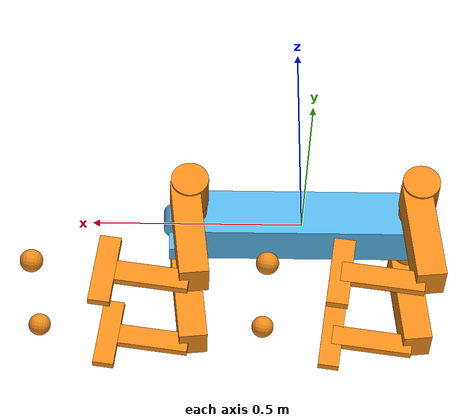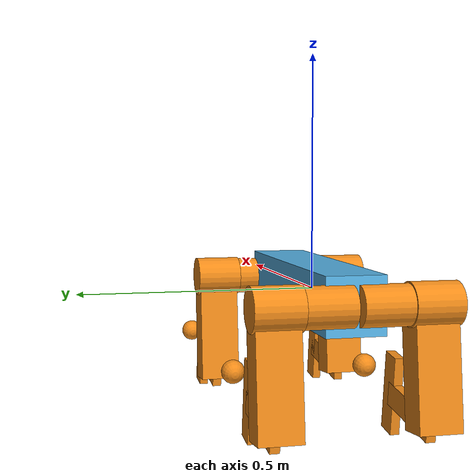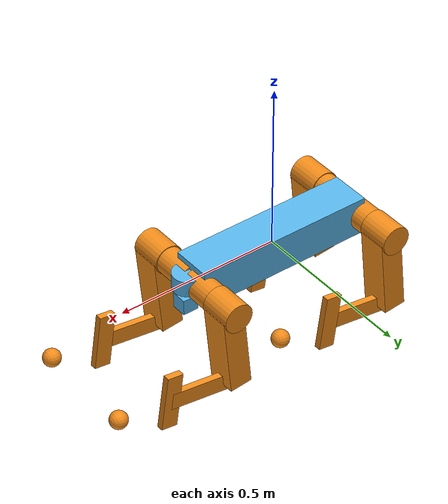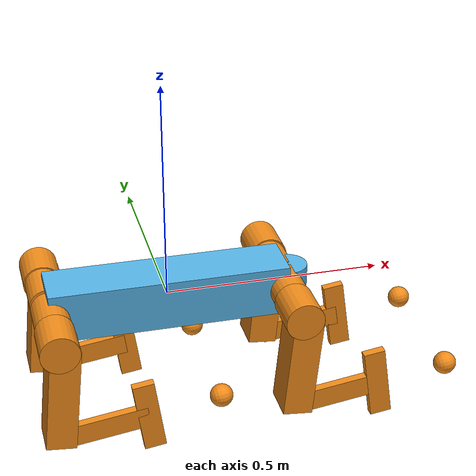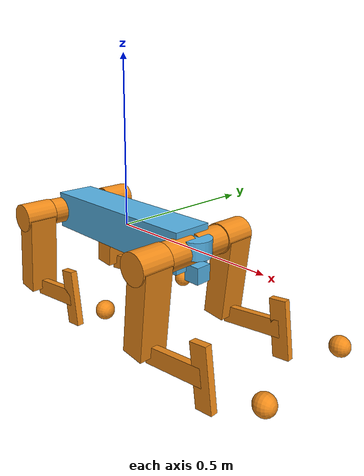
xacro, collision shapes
<?xml version="1.0"?>

<robot name="arcdog_adjustable_leg" xmlns:xacro="http://www.ros.org/wiki/xacro">

	<xacro:arg name="DEBUG" default="false"/>
	<xacro:arg name="GAZEBO" default="false"/>
	<xacro:arg name="CLASSIC" default="false"/>
    <xacro:arg name="robot_type" default="arcdog_adjustable_leg"/>
    <xacro:property name="robot_type" value="$(arg robot_type)"/>
	<xacro:arg name="simulator" default="test"/>
    <xacro:property name="simulator" value="$(arg simulator)"/>

	<xacro:include filename="$(find arcdog_adjustable_leg_description)/xacro/const.xacro"/>
	<xacro:include filename="$(find arcdog_adjustable_leg_description)/xacro/materials.xacro"/>
	<xacro:include filename="$(find arcdog_adjustable_leg_description)/xacro/leg.xacro"/>

	<xacro:if value="$(arg GAZEBO)">
		<xacro:if value="$(arg CLASSIC)">
			<xacro:include filename="$(find arcdog_adjustable_leg_description)/xacro/gazebo_classic.xacro"/>
		</xacro:if>
		<xacro:unless value="$(arg CLASSIC)">
			<xacro:include filename="$(find arcdog_adjustable_leg_description)/xacro/gazebo.xacro"/>
		</xacro:unless>
	</xacro:if>
	<xacro:unless value="$(arg GAZEBO)">
		<xacro:include filename="$(find arcdog_adjustable_leg_description)/xacro/ros2_control.xacro"/>
	</xacro:unless>

	<!-- Rotor related joint and link is only for demonstrate location. -->
	<!-- Actually, the rotor will rotate and the joint is not fixed. Reduction ratio should be considered. -->

	<!-- Debug mode will hung up the robot, use "true" or "false" to switch it. -->
	<xacro:if value="$(arg DEBUG)">
		<link name="world"/>
		<joint name="base_static_joint" type="fixed">
			<origin rpy="0 0 0" xyz="0 0 0"/>
			<parent link="world"/>
			<child link="base"/>
		</joint>
	</xacro:if>

	<link name="base">
		<visual>
			<origin rpy="0 0 0" xyz="0 0 0"/>
			<geometry>
				<box size="0.001 0.001 0.001"/>
			</geometry>
		</visual>
	</link>

	<joint name="floating_base" type="fixed">
		<origin rpy="0 0 0" xyz="0 0 0"/>
		<parent link="base"/>
		<child link="trunk"/>
	</joint>

	<link name="trunk">
		<visual>
			<origin rpy="0 0 0" xyz="0 0 0"/>
			<geometry>
				<mesh filename="file://$(find arcdog_adjustable_leg_description)/assets/trunk.stl" scale="1 1 1"/>
			</geometry>
		</visual>
		<collision>
			<origin rpy="0 0 0" xyz="0 0 0"/>
			<geometry>
				<box size="${trunk_length} ${trunk_width} ${trunk_height}"/>
			</geometry>
		</collision>
		<collision>
			<origin rpy="0 0 0" xyz="0 0 0"/>
			<geometry>
				<box size="0.1881 0.04675 0.057"/>
			</geometry>
		</collision>
		<collision>
			<origin rpy="0 0 0" xyz="0.285 0 0.01"/>
			<geometry>
				<cylinder length="0.05" radius="0.045"/>
			</geometry>
		</collision>
		<collision>
			<origin rpy="0 0 0" xyz="0.293 0 -0.06"/>
			<geometry>
				<box size="0.047 0.047 0.047"/>
			</geometry>
		</collision>
		<inertial>
			<origin rpy="0 0 0" xyz="${trunk_com_x} ${trunk_com_y} ${trunk_com_z}"/>
			<mass value="${trunk_mass}"/>
			<inertia
							ixx="${trunk_ixx}" ixy="${trunk_ixy}" ixz="${trunk_ixz}"
							iyy="${trunk_iyy}" iyz="${trunk_iyz}"
							izz="${trunk_izz}"/>
		</inertial>
	</link>

	<joint name="imu_joint" type="fixed">
		<parent link="trunk"/>
		<child link="imu_link"/>
		<origin rpy="0 0 0" xyz="0 0 0"/>
	</joint>

	<link name="imu_link">
		<inertial>
			<mass value="0.001"/>
			<origin rpy="0 0 0" xyz="0 0 0"/>
			<inertia ixx="0.0001" ixy="0" ixz="0" iyy="0.0001" iyz="0" izz="0.0001"/>
		</inertial>
		<visual>
			<origin rpy="0 0 0" xyz="0 0 0"/>
			<geometry>
				<box size="0.001 0.001 0.001"/>
			</geometry>
		</visual>
		<collision>
			<origin rpy="0 0 0" xyz="0 0 0"/>
			<geometry>
				<box size=".001 .001 .001"/>
			</geometry>
		</collision>
	</link>
    <xacro:leg prefix="FR" mirror="-1" mirror_dae="False" front_hind="1" front_hind_dae="True" simulator="${simulator}" robot_type="${robot_type}">
        <origin rpy="0 0 0" xyz="${leg_offset_x} ${-leg_offset_y} 0"/>
    </xacro:leg>

    <xacro:leg prefix="FL" mirror="1" mirror_dae="True" front_hind="1" front_hind_dae="True" simulator="${simulator}" robot_type="${robot_type}">
        <origin rpy="0 0 0" xyz="${leg_offset_x} ${leg_offset_y} 0"/>
    </xacro:leg>

    <xacro:leg prefix="RR" mirror="-1" mirror_dae="False" front_hind="-1" front_hind_dae="False" simulator="${simulator}" robot_type="${robot_type}">
        <origin rpy="0 0 0" xyz="${-leg_offset_x} ${-leg_offset_y} 0"/>
    </xacro:leg>

    <xacro:leg prefix="RL" mirror="1" mirror_dae="True" front_hind="-1" front_hind_dae="False" simulator="${simulator}" robot_type="${robot_type}">
        <origin rpy="0 0 0" xyz="${-leg_offset_x} ${leg_offset_y} 0"/>
    </xacro:leg>
</robot>

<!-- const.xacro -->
<robot xmlns:xacro="http://www.ros.org/wiki/xacro">

	<!-- Constants for robot dimensions -->
	<xacro:property name="PI" value="3.1415926535897931"/>
	<xacro:property name="stick_mass" value="0.00001"/>

	<!-- simplified collision value -->
    <xacro:property name="trunk_width" value="0.121"/>
    <xacro:property name="trunk_length" value="0.548"/>
    <xacro:property name="trunk_height" value="0.116"/>
    <xacro:property name="hip_radius" value="0.041"/>
    <xacro:property name="hip_length" value=" 0.1095"/>
    <xacro:property name="thigh_shoulder_radius" value="0.044"/>
    <xacro:property name="thigh_shoulder_length" value="0.0985"/>
    <xacro:property name="thigh_shoulder_y_offset" value="0.0"/> //TODO

    <xacro:property name="thigh_width" value="0.088"/>
    <xacro:property name="thigh_height" value="0.06797"/>
    <xacro:property name="thigh_x_offset" value="0.000"/> //TODO
    <xacro:property name="calf_width" value="0.02"/>
    <xacro:property name="calf_height" value="0.05"/>
    <xacro:property name="calf_x_offset" value="0.000"/> //TODO
	<xacro:property name="foot_radius" value="0.0265"/>
	<xacro:property name="stick_radius" value="0.01"/>
	<xacro:property name="stick_length" value="0.2"/>

    <!-- kinematic value -->
    <xacro:property name="thigh_offset" value="0.09426"/>
    <xacro:property name="thigh_length" value="0.2445"/>
    <xacro:property name="calf_length" value="0.1930"/>

    <!-- leg offset from trunk center value -->
    <xacro:property name="leg_offset_x" value="0.269"/>
    <xacro:property name="leg_offset_y" value="0.0605"/>
    <xacro:property name="trunk_offset_z" value="0.01675"/> //TODO
    <xacro:property name="hip_offset" value="0.0001"/> //TODO

	<!-- offset of link locations (left front) -->
	<xacro:property name="hip_offset_x" value="0.1934"/>
	<xacro:property name="hip_offset_y" value="0.0465"/>
	<xacro:property name="hip_offset_z" value="0.0"/>

    <!-- kinematic value -->

	<xacro:property name="calf_offset_x" value="0.0"/>
	<xacro:property name="calf_offset_y" value="0.0"/>
	<xacro:property name="calf_offset_z" value="-0.213"/>

    <!-- joint limits -->
    <xacro:property name="damping" value="0.05"/>
    <xacro:property name="friction" value="0.01"/>
    <xacro:property name="hip_max" value="${70*pi/180.0}"/>
    <xacro:property name="hip_min" value="${-70*pi/180.0}"/>
    <xacro:property name="hip_velocity_max" value="20"/>
    <xacro:property name="hip_torque_max" value="35.278"/>
    <xacro:property name="thigh_max" value="3.4907"/>
    <xacro:property name="thigh_min" value="-1.5708"/>
    <xacro:property name="thigh_velocity_max" value="20"/>
    <xacro:property name="thigh_torque_max" value="35.278"/>
    <xacro:property name="calf_max" value="${-37*pi/180.0}"/>
    <xacro:property name="calf_min" value="${-159*pi/180.0}"/>
    <xacro:property name="calf_velocity_max" value="15.89"/>
    <xacro:property name="calf_torque_max" value="44.4"/>

    <!-- dynamics inertial value    total 22.0kg-->
    <!-- trunk -->
    <xacro:property name="trunk_mass" value="7.021"/>
    <xacro:property name="trunk_com_x" value="0.00575"/>
    <xacro:property name="trunk_com_y" value="0.00126"/>
    <xacro:property name="trunk_com_z" value="-0.00469"/>
    <xacro:property name="trunk_ixx" value="0.03769023916"/>
    <xacro:property name="trunk_ixy" value="0.00001433761"/>
    <xacro:property name="trunk_ixz" value="0.00051349975"/>
    <xacro:property name="trunk_iyy" value="0.05008788073"/>
    <xacro:property name="trunk_iyz" value="0.00015851764"/>
    <xacro:property name="trunk_izz" value="0.07146322696"/>

    <!-- hip (left front) -->
    <xacro:property name="hip_mass" value="1.162"/>
    <xacro:property name="hip_com_x" value="-0.00758"/>
    <xacro:property name="hip_com_y" value="-0.00359"/>
    <xacro:property name="hip_com_z" value="-0.00029"/>
    <xacro:property name="hip_ixx" value="0.00095157705"/>
    <xacro:property name="hip_ixy" value="0.00001109670"/>
    <xacro:property name="hip_ixz" value="-0.00000266665"/>
    <xacro:property name="hip_iyy" value="0.00159323348"/>
    <xacro:property name="hip_iyz" value="-0.00001267180"/>
    <xacro:property name="hip_izz" value="0.00125451931"/>

    <!-- thigh -->
    <xacro:property name="thigh_mass" value="1.528"/>
    <xacro:property name="thigh_com_x" value="0.00033"/>
    <xacro:property name="thigh_com_y" value="0.03334"/>
    <xacro:property name="thigh_com_z" value="-0.02983"/>
    <xacro:property name="thigh_ixx" value="0.00884041519"/>
    <xacro:property name="thigh_ixy" value="-0.00003381758"/>
    <xacro:property name="thigh_ixz" value="-0.00005336860"/>
    <xacro:property name="thigh_iyy" value="0.00784145389"/>
    <xacro:property name="thigh_iyz" value="0.00128350622"/>
    <xacro:property name="thigh_izz" value="0.00260045020"/>

    <!-- calf -->
    <xacro:property name="calf_mass" value="0.132"/>
    <xacro:property name="calf_com_x" value="0.0016"/>
    <xacro:property name="calf_com_y" value="0.00438"/>
    <xacro:property name="calf_com_z" value="-0.12232"/>
    <xacro:property name="calf_ixx" value="0.00228050753"/>
    <xacro:property name="calf_ixy" value="-0.00000033551"/>
    <xacro:property name="calf_ixz" value="0.00000826635"/>
    <xacro:property name="calf_iyy" value="0.00225891907"/>
    <xacro:property name="calf_iyz" value="0.00010727008"/>
    <xacro:property name="calf_izz" value="0.00005160443"/>

	<!-- foot -->
	<xacro:property name="foot_mass" value="0.06"/>

    <!-- pricmatic joint -->
    <xacro:property name="box_effort_max" value="50"/>
    <xacro:property name="box_velocity_max" value="50"/>

    <!-- adjustable leg -->
    <xacro:property name="box_length" value="0.1691"/>
    <xacro:property name="box_width" value="0.02"/>
    <xacro:property name="box_height" value="0.05"/>
    <xacro:property name="box_mass" value="0.132"/>
    <xacro:property name="box_ixx" value="0.00228050753"/>
    <xacro:property name="box_iyy" value="0.00225891907"/>
    <xacro:property name="box_izz" value="0.00005160443"/>

</robot>

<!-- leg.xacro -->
<robot xmlns:xacro="http://www.ros.org/wiki/xacro">

    <xacro:include filename="$(find arcdog_adjustable_leg_description)/xacro/transmission.xacro"/>

    <xacro:macro name="leg" params="prefix mirror mirror_dae front_hind front_hind_dae simulator robot_type *origin">

        <xacro:if value="${simulator == 'ocs2'}">
            <joint name="${prefix}_HAA" type="revolute">
                <xacro:insert_block name="origin"/>
                <parent link="trunk"/>
                <child link="${prefix}_hip"/>
                <axis xyz="1 0 0"/>
                <dynamics damping="${damping}" friction="${friction}"/>
                <xacro:if value="${(mirror_dae == True)}">
                    <limit effort="${hip_torque_max}" velocity="${hip_velocity_max}" lower="${hip_min}"
                        upper="${hip_max}"/>
                </xacro:if>
                <xacro:if value="${(mirror_dae == False)}">
                    <limit effort="${hip_torque_max}" velocity="${hip_velocity_max}" lower="${-hip_max}"
                        upper="${-hip_min}"/>
                </xacro:if>
            </joint>
        </xacro:if>

        <xacro:if value="${simulator == 'test'}">
            <joint name="${prefix}_hip_joint" type="revolute">
                <xacro:insert_block name="origin"/>
                <parent link="trunk"/>
                <child link="${prefix}_hip"/>
                <axis xyz="1 0 0"/>
                <dynamics damping="${damping}" friction="${friction}"/>
                <xacro:if value="${(mirror_dae == True)}">
                    <limit effort="${hip_torque_max}" velocity="${hip_velocity_max}" lower="${hip_min}"
                        upper="${hip_max}"/>
                </xacro:if>
                <xacro:if value="${(mirror_dae == False)}">
                    <limit effort="${hip_torque_max}" velocity="${hip_velocity_max}" lower="${-hip_max}"
                        upper="${-hip_min}"/>
                </xacro:if>
            </joint>
        </xacro:if>

        <xacro:if value="${simulator == 'mujoco'}">
            <joint name="${prefix}_hip_joint" type="revolute">
                <xacro:insert_block name="origin"/>
                <parent link="trunk"/>
                <child link="${prefix}_hip"/>
                <axis xyz="1 0 0"/>
                <dynamics damping="${damping}" friction="${friction}"/>
                <xacro:if value="${(mirror_dae == True)}">
                    <limit effort="${hip_torque_max}" velocity="${hip_velocity_max}" lower="${hip_min}"
                        upper="${hip_max}"/>
                </xacro:if>
                <xacro:if value="${(mirror_dae == False)}">
                    <limit effort="${hip_torque_max}" velocity="${hip_velocity_max}" lower="${-hip_max}"
                        upper="${-hip_min}"/>
                </xacro:if>
            </joint>
        </xacro:if>

        <link name="${prefix}_hip">
            <visual>
                <xacro:if value="${(mirror_dae == True) and (front_hind_dae == True)}">
                    <origin rpy="0 0 0" xyz="0 0 0"/>
                </xacro:if>
                <xacro:if value="${(mirror_dae == False) and (front_hind_dae == True)}">
                    <origin rpy="${pi} 0 0" xyz="0 0 0"/>
                </xacro:if>
                <xacro:if value="${(mirror_dae == True) and (front_hind_dae == False)}">
                    <origin rpy="0 ${pi} 0" xyz="0 0 0"/>
                </xacro:if>
                <xacro:if value="${(mirror_dae == False) and (front_hind_dae == False)}">
                    <origin rpy="${pi} ${pi} 0" xyz="0 0 0"/>
                </xacro:if>
                <geometry>
                    <mesh filename="package://arcdog_adjustable_leg_description/assets/hip.stl"
                          scale="1 1 1"/>
                </geometry>
                <material name="orange"/>
            </visual>
            <collision>
                <origin rpy="${pi/2.0} 0 0" xyz="0 0 0"/>
                <geometry>
                    <cylinder length="${hip_length}" radius="${hip_radius}"/>
                </geometry>
            </collision>
            <inertial>
                <origin rpy="0 0 0" xyz="${hip_com_x*front_hind} ${hip_com_y*mirror} ${hip_com_z}"/>
                <mass value="${hip_mass}"/>
                <inertia
                        ixx="${hip_ixx}" ixy="${hip_ixy*mirror*front_hind}" ixz="${hip_ixz*front_hind}"
                        iyy="${hip_iyy}" iyz="${hip_iyz*mirror}"
                        izz="${hip_izz}"/>
            </inertial>
        </link>

        <xacro:if value="${simulator == 'ocs2'}">
            <joint name="${prefix}_HFE" type="revolute">
                <origin rpy="0 0 0" xyz="0 ${thigh_offset*mirror} 0"/>
                <parent link="${prefix}_hip"/>
                <child link="${prefix}_thigh"/>
                <axis xyz="0 1 0"/>
                <dynamics damping="${damping}" friction="${friction}"/>
                <limit effort="${thigh_torque_max}" velocity="${thigh_velocity_max}" lower="${thigh_min}"
                    upper="${thigh_max}"/>
            </joint>
        </xacro:if>

        <xacro:if value="${simulator == 'test'}">
            <joint name="${prefix}_thigh_joint" type="revolute">
                <origin rpy="0 0 0" xyz="0 ${thigh_offset*mirror} 0"/>
                <parent link="${prefix}_hip"/>
                <child link="${prefix}_thigh"/>
                <axis xyz="0 1 0"/>
                <dynamics damping="${damping}" friction="${friction}"/>
                <limit effort="${thigh_torque_max}" velocity="${thigh_velocity_max}" lower="${thigh_min}"
                    upper="${thigh_max}"/>
            </joint>
        </xacro:if>

        <xacro:if value="${simulator == 'mujoco'}">
            <joint name="${prefix}_thigh_joint" type="revolute">
                <origin rpy="0 0 0" xyz="0 ${thigh_offset*mirror} 0"/>
                <parent link="${prefix}_hip"/>
                <child link="${prefix}_thigh"/>
                <axis xyz="0 1 0"/>
                <dynamics damping="${damping}" friction="${friction}"/>
                <limit effort="${thigh_torque_max}" velocity="${thigh_velocity_max}" lower="${thigh_min}"
                    upper="${thigh_max}"/>
            </joint>
        </xacro:if>

        <link name="${prefix}_thigh">
            <visual>
                <origin rpy="0 0 0" xyz="0 0 0"/>
                <geometry>
                    <xacro:if value="${mirror_dae == True}">
                        <mesh filename="package://arcdog_adjustable_leg_description/assets/thigh.stl"
                              scale="1 1 1"/>
                    </xacro:if>
                    <xacro:if value="${mirror_dae == False}">
                        <mesh filename="package://arcdog_adjustable_leg_description/assets/thigh_mirror.stl"
                              scale="1 1 1"/>
                    </xacro:if>
                </geometry>
                <material name="orange"/>
            </visual>
            <collision>
                <origin rpy="0 ${pi/2.0+0.1} 0" xyz="${thigh_x_offset} 0 ${-thigh_length/2.0}"/>
                <geometry>
                    <box size="${thigh_length} ${thigh_width} ${thigh_height}"/>
                </geometry>
            </collision>
            <collision>
                <origin rpy="${pi/2.0} 0 0" xyz="0 ${mirror*thigh_shoulder_y_offset} 0"/>
                <geometry>
                    <cylinder length="${thigh_shoulder_length}" radius="${thigh_shoulder_radius}"/>
                </geometry>
            </collision>
            <inertial>
                <origin rpy="0 0 0" xyz="${thigh_com_x} ${thigh_com_y*mirror} ${thigh_com_z}"/>
                <mass value="${thigh_mass}"/>
                <inertia
                        ixx="${thigh_ixx}" ixy="${thigh_ixy*mirror}" ixz="${thigh_ixz}"
                        iyy="${thigh_iyy}" iyz="${thigh_iyz*mirror}"
                        izz="${thigh_izz}"/>
            </inertial>
        </link>

        <xacro:if value="${simulator == 'ocs2'}">
            <joint name="${prefix}_KFE" type="revolute">
                <origin rpy="0 0 0" xyz="0 0 ${-thigh_length}"/>
                <parent link="${prefix}_thigh"/>
                <child link="${prefix}_calf"/>
                <axis xyz="0 1 0"/>
                <dynamics damping="${damping}" friction="${friction}"/>
                <limit effort="${calf_torque_max}" velocity="${calf_velocity_max}" lower="${calf_min}" upper="${calf_max}"/>
            </joint>
        </xacro:if>

        <xacro:if value="${simulator == 'test'}">
            <joint name="${prefix}_calf_joint" type="revolute">
                <origin rpy="0 0 0" xyz="0 0 ${-thigh_length}"/>
                <parent link="${prefix}_thigh"/>
                <child link="${prefix}_calf"/>
                <axis xyz="0 1 0"/>
                <dynamics damping="${damping}" friction="${friction}"/>
                <limit effort="${calf_torque_max}" velocity="${calf_velocity_max}" lower="${calf_min}" upper="${calf_max}"/>
            </joint>
        </xacro:if>

        <xacro:if value="${simulator == 'mujoco'}">
            <joint name="${prefix}_calf_joint" type="revolute">
                <origin rpy="0 0 0" xyz="0 0 ${-thigh_length}"/>
                <parent link="${prefix}_thigh"/>
                <child link="${prefix}_calf"/>
                <axis xyz="0 1 0"/>
                <dynamics damping="${damping}" friction="${friction}"/>
                <limit effort="${calf_torque_max}" velocity="${calf_velocity_max}" lower="${calf_min}" upper="${calf_max}"/>
            </joint>
        </xacro:if>

        <link name="${prefix}_calf">
            <visual>
                <origin rpy="0 0 0" xyz="0 0 0"/>
                <geometry>
                    <mesh filename="package://arcdog_adjustable_leg_description/assets/calf.stl"
                          scale="1 1 1"/>
                </geometry>
                <material name="orange"/>
            </visual>
            <collision>
                <origin rpy="0 ${pi/2.0} 0" xyz="${calf_x_offset} 0 ${-calf_length/2.0}"/>
                <geometry>
                    <box size="${calf_length} ${calf_width} ${calf_height}"/>
                </geometry>
            </collision>
            <inertial>
                <origin rpy="0 0 0" xyz="${calf_com_x} ${calf_com_y} ${calf_com_z}"/>
                <mass value="${calf_mass}"/>
                <inertia
                        ixx="${calf_ixx}" ixy="${calf_ixy}" ixz="${calf_ixz}"
                        iyy="${calf_iyy}" iyz="${calf_iyz}"
                        izz="${calf_izz}"/>
            </inertial>
        </link>

        <!-- 在 calf 和 foot 之间添加 box link -->
        <link name="${prefix}_box">
            <visual>
                <origin rpy="0 0 0" xyz="0 0 0"/>
                <geometry>
                    <mesh filename="package://arcdog_adjustable_leg_description/assets/adjustable_leg.stl"
                          scale="1 1 1"/>
                </geometry>
                <material name="orange"/>
            </visual>
            <collision>
                <origin rpy="0 0 0" xyz="0 0 0"/>
                <geometry>
                    <box size="${box_length} ${box_width} ${box_height}"/>
                </geometry>
            </collision>
            <inertial>
                <origin rpy="0 0 0" xyz="0 0 0"/>
                <mass value="${box_mass}"/> <!-- 定义 box 的质量 -->
                <inertia
                    ixx="${box_ixx}" ixy="0" ixz="0"
                    iyy="${box_iyy}" iyz="0"
                    izz="${box_izz}"/>
            </inertial>
        </link>

        <!-- 添加 prismatic joint -->
        <joint name="${prefix}_box_joint" type="prismatic">
            <origin rpy="0 0 0" xyz="0 0 ${-calf_length}"/> <!-- 根据 calf 的长度调整位置 -->
            <parent link="${prefix}_calf"/>
            <child link="${prefix}_box"/>
            <axis xyz="0 0 1"/> <!-- 定义滑动轴 -->
            <dynamics damping="${damping}" friction="${friction}"/>
            <limit effort="${box_effort_max}" velocity="${box_velocity_max}" lower="0" upper="${-calf_length}"/> <!-- 定义限制条件 -->
        </joint>

        <joint name="${prefix}_foot_fixed" type="fixed" dont_collapse="true">
            <origin rpy="0 0 0" xyz="0 0 ${-box_length}"/> <!-- 连接到 box 的底部 -->
            <parent link="${prefix}_box"/>
            <child link="${prefix}_foot"/>
        </joint>

        <link name="${prefix}_foot">
            <visual>
                <origin rpy="0 0 0" xyz="0 0 0"/>
                <geometry>
                    <sphere radius="${foot_radius-0.01}"/>
                </geometry>
                <material name="orange"/>
            </visual>
            <collision>
                <origin rpy="0 0 0" xyz="0 0 0"/>
                <geometry>
                    <sphere radius="${foot_radius}"/>
                </geometry>
            </collision>
            <inertial>
                <mass value="${foot_mass}"/>
                <inertia
                        ixx="${(2*foot_mass)/5.0*(foot_radius*foot_radius)}" ixy="0.0" ixz="0.0"
                        iyy="${(2*foot_mass)/5.0*(foot_radius*foot_radius)}" iyz="0.0"
                        izz="${(2*foot_mass)/5.0*(foot_radius*foot_radius)}"/>
            </inertial>
        </link>

        <gazebo reference="${prefix}_foot_fixed">
            <disableFixedJointLumping>true</disableFixedJointLumping>
        </gazebo>

        <gazebo reference="${prefix}_hip">
            <mu1>0.2</mu1>
            <mu2>0.2</mu2>
            <material>Gazebo/DarkGrey</material>
        </gazebo>
        <gazebo reference="${prefix}_thigh">
            <mu1>0.2</mu1>
            <mu2>0.2</mu2>
            <self_collide>0</self_collide>
            <material>Gazebo/DarkGrey</material>
            <kp value="1000000.0"/>
            <kd value="100.0"/>
        </gazebo>
        <gazebo reference="${prefix}_calf">
            <mu1>0.6</mu1>
            <mu2>0.6</mu2>
            <self_collide>1</self_collide>
        </gazebo>

        <gazebo reference="${prefix}_box">
            <mu1>0.4</mu1>  <!-- 根据需要设置静摩擦系数 -->
            <mu2>0.4</mu2>  <!-- 根据需要设置动摩擦系数 -->
            <self_collide>0</self_collide>
            <material>Gazebo/DarkGrey</material>  <!-- 可根据需要更改材料 -->
        </gazebo>

        <gazebo reference="${prefix}_FOOT">
            <mu1>0.6</mu1>
            <mu2>0.6</mu2>
            <self_collide>1</self_collide>
            <material>Gazebo/DarkGrey</material>
            <kp value="1000000.0"/>
            <kd value="100.0"/>
        </gazebo>

        <gazebo reference="${prefix}_box_joint">
            <mu1>0.4</mu1>  <!-- 设置滑动关节的摩擦系数 -->
            <mu2>0.4</mu2>
        </gazebo>

        <xacro:leg_transmission name="${prefix}"/>
    </xacro:macro>
</robot>
